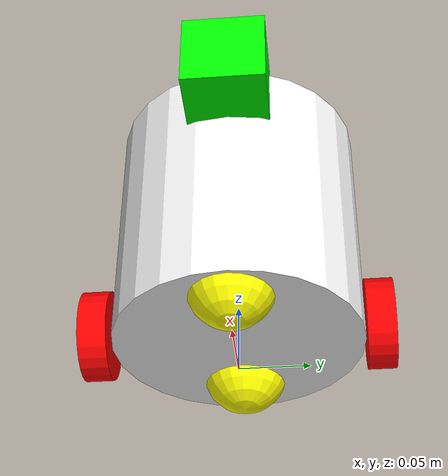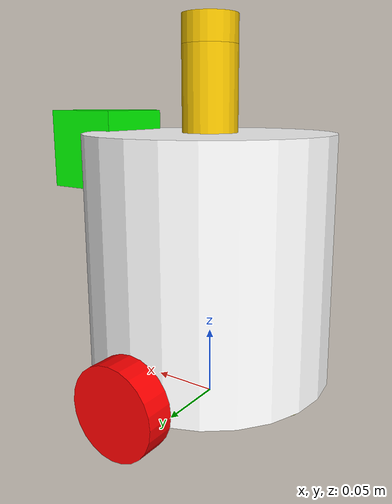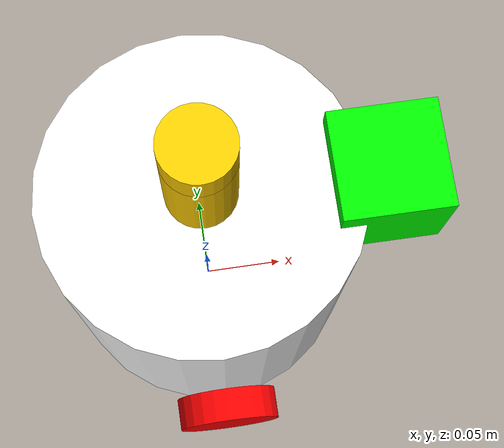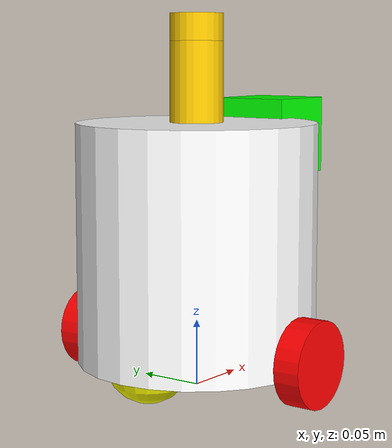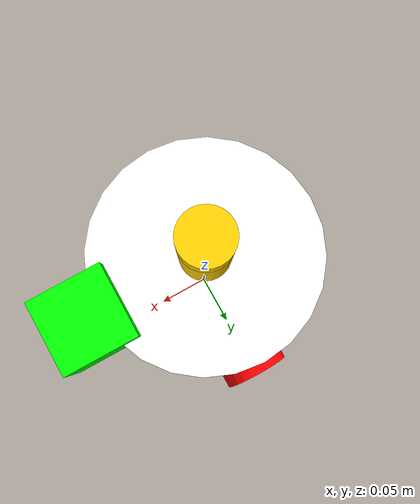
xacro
<?xml version="1.0"?>
<robot xmlns:xacro="http://www.ros.org/wiki/xacro" name="fishbot">

  <xacro:include filename="common_inertial.xacro"/>

  <!-- 机器人的主体部件 -->
  <xacro:include filename="base.urdf.xacro"/>

  <!-- 传感器部件 -->
  <xacro:include filename="sensor/imu.urdf.xacro"/>
  <xacro:include filename="sensor/camera.urdf.xacro"/>
  <xacro:include filename="sensor/laser.urdf.xacro"/>

  <!-- 执行器部件 -->
  <xacro:include filename="actuator/wheel.urdf.xacro"/>
  <xacro:include filename="actuator/caster.urdf.xacro"/>
  <!-- 插件 -->
  <xacro:include filename="plugins/gazebo_sensor_plugin.xacro"/>
  <xacro:include filename="fishbot.ros2_control.xacro"/>

  <!-- 尺寸参数 -->
  <xacro:property name="base_r" value="0.09"/>
  <xacro:property name="base_l" value="0.18"/>
  <xacro:property name="wheel_radius" value="0.032"/>
  <xacro:property name="wheel_length" value="0.02"/>
  <xacro:property name="caster_radius" value="0.032"/>

  <!-- 轮子着地，底盘底部留 2cm 离地间隙 -->
  <xacro:property name="ground_z" value="${-base_l/2 - 0.02}"/>
  <xacro:property name="wheel_z" value="${ground_z + wheel_radius}"/>
  <xacro:property name="caster_z" value="${ground_z + caster_radius}"/>

  <!-- 驱动轮贴在底盘外侧，万向轮放在前后边缘 -->
  <xacro:property name="wheel_y" value="${base_r + wheel_length/2}"/>
  <xacro:property name="caster_x" value="${base_r - caster_radius}"/>

  <!-- 实例化各部件 -->
  <xacro:base_xacro length="${base_l}" radius="${base_r}"/>
  <xacro:imu_xacro xyz="0.0 0.0 0.02"/>
  <xacro:camera_xacro xyz="0.10 0.0 0.075"/>
  <xacro:laser_xacro xyz="0.0 0.0 0.10"/>
  <xacro:wheel_xacro wheel_name="left_wheel" xyz="0.0 ${wheel_y} ${wheel_z}"/>
  <xacro:wheel_xacro wheel_name="right_wheel" xyz="0.0 ${-wheel_y} ${wheel_z}"/>
  <xacro:caster_xacro caster_name="front_caster" xyz="${caster_x} 0.0 ${caster_z}"/>
  <xacro:caster_xacro caster_name="rear_caster" xyz="${-caster_x} 0.0 ${caster_z}"/>

  <xacro:gazebo_sensor_plugin/>
  <xacro:fishbot_ros2_control/>

</robot>

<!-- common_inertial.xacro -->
<robot xmlns:xacro="http://www.ros.org/wiki/xacro">

  <!-- 长方体惯性，x/y/z 为边长 -->
  <xacro:macro name="box_inertial" params="mass x y z">
    <inertial>
      <origin xyz="0.0 0.0 0.0" rpy="0.0 0.0 0.0"/>
      <mass value="${mass}"/>
      <inertia
        ixx="${mass * (y*y + z*z) / 12.0}"
        ixy="0.0"
        ixz="0.0"
        iyy="${mass * (x*x + z*z) / 12.0}"
        iyz="0.0"
        izz="${mass * (x*x + y*y) / 12.0}"/>
    </inertial>
  </xacro:macro>

  <!-- 圆柱惯性，默认轴线沿 z；轮子等再通过 rpy 转到实际姿态 -->
  <xacro:macro name="cylinder_inertial" params="mass radius length rpy">
    <inertial>
      <origin xyz="0.0 0.0 0.0" rpy="${rpy}"/>
      <mass value="${mass}"/>
      <inertia
        ixx="${mass * (3*radius*radius + length*length) / 12.0}"
        ixy="0.0"
        ixz="0.0"
        iyy="${mass * (3*radius*radius + length*length) / 12.0}"
        iyz="0.0"
        izz="${mass * radius*radius / 2.0}"/>
    </inertial>
  </xacro:macro>

  <!-- 球体惯性 -->
  <xacro:macro name="sphere_inertial" params="mass radius">
    <inertial>
      <origin xyz="0.0 0.0 0.0" rpy="0.0 0.0 0.0"/>
      <mass value="${mass}"/>
      <inertia
        ixx="${2.0 * mass * radius * radius / 5.0}"
        ixy="0.0"
        ixz="0.0"
        iyy="${2.0 * mass * radius * radius / 5.0}"
        iyz="0.0"
        izz="${2.0 * mass * radius * radius / 5.0}"/>
    </inertial>
  </xacro:macro>

</robot>

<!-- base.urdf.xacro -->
<robot xmlns:xacro="http://www.ros.org/wiki/xacro">

  <xacro:property name="base_radius" value="0.25"/>
  <xacro:property name="base_length" value="0.2"/>
  <xacro:property name="imu_size" value="0.02"/>
  <xacro:property name="base_footprint_z" value="0.0"/>

  <link name="base_footprint"/>

  <!-- 机器人的身体部分 -->
  <xacro:macro name="base_xacro" params="radius length">
    <link name="base_link">
      <!-- 部件的外观描述 -->
      <visual>
        <!-- 沿着几何中心的偏移和旋转量 -->
        <origin xyz="0.0 0.0 0.0" rpy="0.0 0.0 0.0"/>
        <!-- 形状的几何描述 -->
        <geometry>
          <!-- 圆柱体 ,半径,高度 -->
          <cylinder radius="${radius}" length="${length}"/>
        </geometry>
        <!-- 形状的材质描述 -->
        <material name="white">
          <color rgba="1.0 1.0 1.0 1.0"/>
        </material>
      </visual>
      <collision>
        <origin xyz="0.0 0.0 0.0" rpy="0.0 0.0 0.0"/>
        <geometry>
          <cylinder radius="${radius}" length="${length}"/>
        </geometry>
      </collision>
      <xacro:cylinder_inertial mass="15.0" radius="${radius}" length="${length}" rpy="0.0 0.0 0.0"/>
    </link>
    <joint name="base_footprint_joint" type="fixed">
      <parent link="base_footprint"/>
      <child link="base_link"/>
      <origin xyz="0.0 0.0 ${length/2 + 0.02}" rpy="0.0 0.0 0.0"/>
    </joint>
  </xacro:macro>

</robot>

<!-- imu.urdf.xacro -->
<robot xmlns:xacro="http://www.ros.org/wiki/xacro">

  <!-- 机器人的IMU部件,惯性测量传感器 -->
  <xacro:macro name="imu_xacro" params="xyz">
    <link name="imu_link">
      <visual>
        <origin xyz="0.0 0.0 0.0" rpy="0.0 0.0 0.0"/>
        <geometry>
          <box size="0.06 0.06 0.06"/>
        </geometry>
        <material name="red">
          <color rgba="1.0 0.0 0.0 1.0"/>
        </material>
      </visual>
      <collision>
        <origin xyz="0.0 0.0 0.0" rpy="0.0 0.0 0.0"/>
        <geometry>
          <box size="0.06 0.06 0.06"/>
        </geometry>
      </collision>
      <xacro:box_inertial mass="0.05" x="0.06" y="0.06" z="0.06"/>
    </link>
    <!-- 机器人的关节部件,用于组合机器人 -->
    <joint name="imu_joint" type="fixed">
      <parent link="base_link"/>
      <child link="imu_link"/>
      <origin xyz="${xyz}" rpy="0.0 0.0 0.0"/>
    </joint>
  </xacro:macro>

</robot>

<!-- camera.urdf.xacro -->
<robot xmlns:xacro="http://www.ros.org/wiki/xacro">

  <!-- 机器人的摄像头部件 -->
  <xacro:macro name="camera_xacro" params="xyz">
    <link name="camera_link">
      <visual>
        <origin xyz="0.0 0.0 0.0" rpy="0.0 0.0 0.0"/>
        <geometry>
          <box size="0.06 0.06 0.06"/>
        </geometry>
        <material name="green">
          <color rgba="0.0 1.0 0.0 1.0"/>
        </material>
      </visual>
      <collision>
        <origin xyz="0.0 0.0 0.0" rpy="0.0 0.0 0.0"/>
        <geometry>
          <box size="0.06 0.06 0.06"/>
        </geometry>
      </collision>
      <xacro:box_inertial mass="0.05" x="0.06" y="0.06" z="0.06"/>
    </link>

    <link name="camera_optical_link"/>

    <joint name="camera_joint" type="fixed">
      <parent link="base_link"/>
      <child link="camera_link"/>
      <origin xyz="${xyz}" rpy="0.0 0.0 0.0"/>
    </joint>

    <joint name="camera_optical_joint" type="fixed">
      <parent link="camera_link"/>
      <child link="camera_optical_link"/>
      <origin xyz="0 0 0" rpy="-1.5708 0 -1.5708"/>
    </joint>
  </xacro:macro>

</robot>

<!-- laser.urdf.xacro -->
<robot xmlns:xacro="http://www.ros.org/wiki/xacro">

  <!-- 机器人的激光雷达部件 -->
  <xacro:macro name="laser_xacro" params="xyz">
    <link name="laser_cylinder_link">
      <visual>
        <origin xyz="0.0 0.0 0.0" rpy="0.0 0.0 0.0"/>
        <geometry>
          <cylinder radius="0.02" length="0.10"/>
        </geometry>
        <material name="yellow">
          <color rgba="1.0 0.8 0.0 1.0"/>
        </material>
      </visual>
      <collision>
        <origin xyz="0.0 0.0 0.0" rpy="0.0 0.0 0.0"/>
        <geometry>
          <cylinder radius="0.02" length="0.10"/>
        </geometry>
      </collision>
      <xacro:cylinder_inertial mass="0.08" radius="0.02" length="0.10" rpy="0.0 0.0 0.0"/>
    </link>

    <!-- 雷达 -->
    <link name="laser_link">
      <visual>
        <origin xyz="0.0 0.0 0.0" rpy="0.0 0.0 0.0"/>
        <geometry>
          <cylinder radius="0.02" length="0.02"/>
        </geometry>
        <material name="yellow">
          <color rgba="1.0 0.8 0.0 1.0"/>
        </material>
      </visual>
      <collision>
        <origin xyz="0.0 0.0 0.0" rpy="0.0 0.0 0.0"/>
        <geometry>
          <cylinder radius="0.02" length="0.02"/>
        </geometry>
      </collision>
      <xacro:cylinder_inertial mass="0.03" radius="0.02" length="0.02" rpy="0.0 0.0 0.0"/>
    </link>

    <!-- 底盘 -> 雷达支柱 -->
    <joint name="laser_cylinder_joint" type="fixed">
      <parent link="base_link"/>
      <child link="laser_cylinder_link"/>
      <origin xyz="${xyz}" rpy="0.0 0.0 0.0"/>
    </joint>

    <!-- 支柱 -> 雷达 -->
    <joint name="laser_joint" type="fixed">
      <parent link="laser_cylinder_link"/>
      <child link="laser_link"/>
      <origin xyz="0.0 0.0 0.06" rpy="0.0 0.0 0.0"/>
    </joint>

    <gazebo reference="laser_cylinder_link">
      <material>Gazebo/Black</material>
    </gazebo>
  </xacro:macro>

</robot>

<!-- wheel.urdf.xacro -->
<robot xmlns:xacro="http://www.ros.org/wiki/xacro">

  <!-- 机器人的轮子部件 -->
  <xacro:macro name="wheel_xacro" params="wheel_name xyz">
    <link name="${wheel_name}_link">
      <visual>
        <origin xyz="0.0 0.0 0.0" rpy="1.57079 0.0 0.0"/>
        <geometry>
          <cylinder radius="0.032" length="0.02"/>
        </geometry>
        <material name="red">
          <color rgba="1.0 0.0 0.0 1.0"/>
        </material>
      </visual>
      <collision>
        <origin xyz="0.0 0.0 0.0" rpy="1.57079 0.0 0.0"/>
        <geometry>
          <cylinder radius="0.032" length="0.02"/>
        </geometry>
      </collision>
      <xacro:cylinder_inertial mass="1.0" radius="0.032" length="0.02" rpy="1.57079 0.0 0.0"/>
    </link>
    <!-- Gazebo 差速插件需要可转动关节 -->
    <joint name="${wheel_name}_joint" type="continuous">
      <parent link="base_link"/>
      <child link="${wheel_name}_link"/>
      <origin xyz="${xyz}" rpy="0.0 0.0 0.0"/>
      <axis xyz="0 1 0"/>
    </joint>
    <gazebo reference="${wheel_name}_link">
      <material>Gazebo/Red</material>
      <mu1>20.0</mu1>
      <mu2>20.0</mu2>
      <kp>10000000.0</kp>
      <kd>1.0</kd>
    </gazebo>
  </xacro:macro>

</robot>

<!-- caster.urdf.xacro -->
<robot xmlns:xacro="http://www.ros.org/wiki/xacro">

  <!-- 机器人的万向轮部件 -->
  <xacro:macro name="caster_xacro" params="caster_name xyz">
    <link name="${caster_name}_link">
      <visual>
        <origin xyz="0.0 0.0 0.0" rpy="0.0 0.0 0.0"/>
        <geometry>
          <sphere radius="0.032"/>
        </geometry>
        <material name="yellow">
          <color rgba="1.0 1.0 0.0 1.0"/>
        </material>
      </visual>
      <collision>
        <origin xyz="0.0 0.0 0.0" rpy="0.0 0.0 0.0"/>
        <geometry>
          <sphere radius="0.032"/>
        </geometry>
      </collision>
      <xacro:sphere_inertial mass="0.5" radius="0.032"/>
    </link>
    <joint name="${caster_name}_joint" type="continuous">
      <parent link="base_link"/>
      <child link="${caster_name}_link"/>
      <origin xyz="${xyz}" rpy="0.0 0.0 0.0"/>
      <axis xyz="0 1 0"/>
    </joint>

  </xacro:macro>

</robot>
